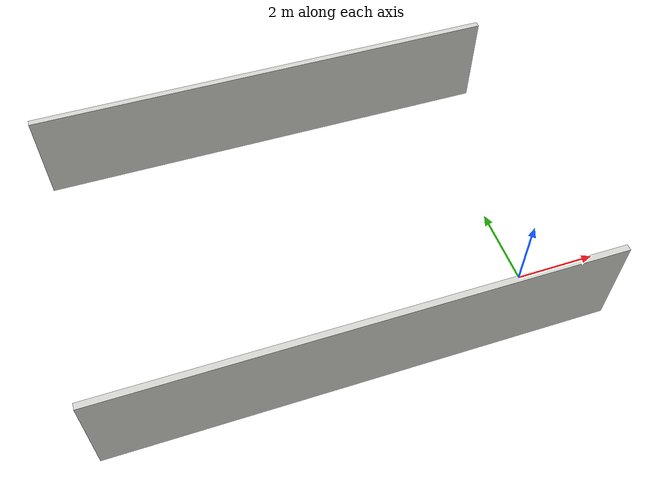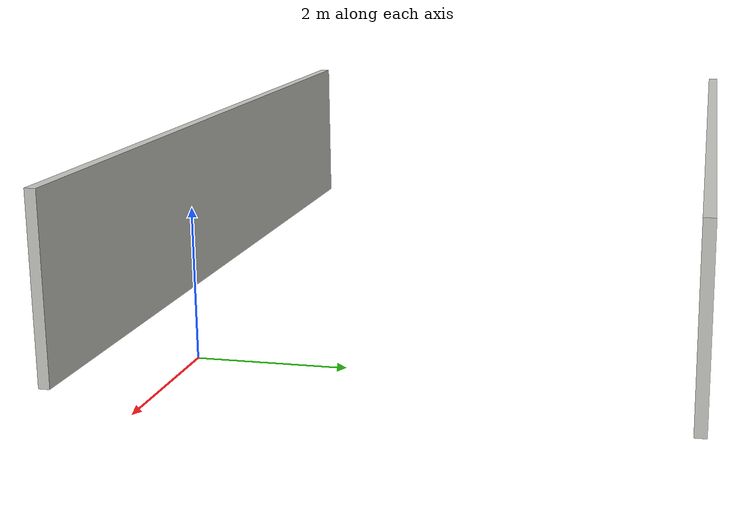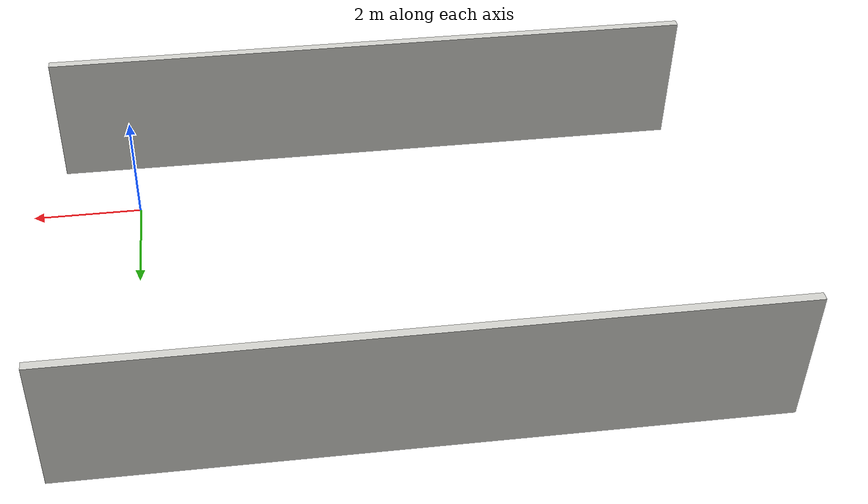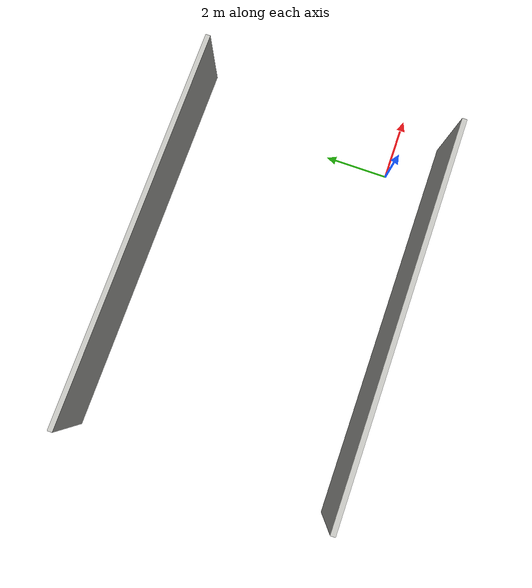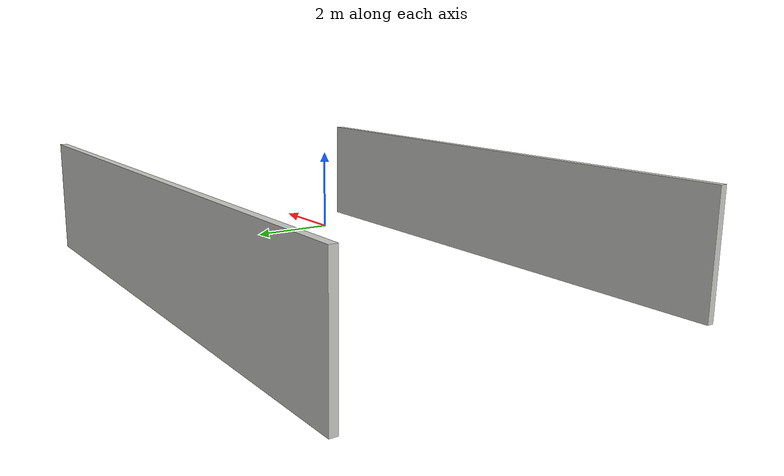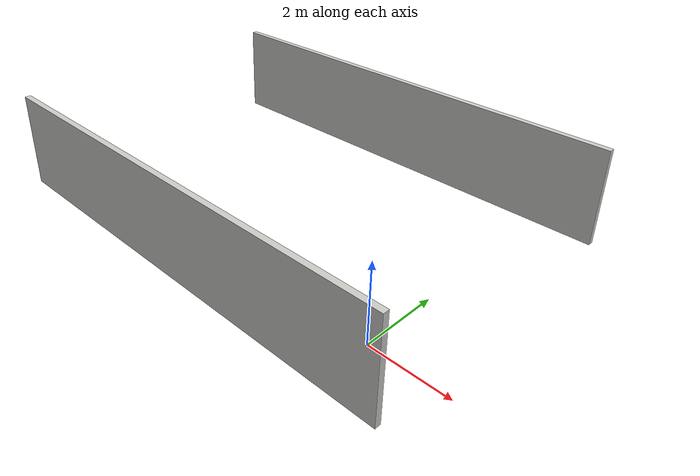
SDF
<?xml version='1.0'?>
<sdf version='1.6'>
  <model name='model_corridor_3'>
    <pose frame=''>-4.55665 2.52127 0 0 -0 0</pose>
    <link name='Wall_5'>
      <collision name='Wall_5_Collision'>
        <geometry>
          <box>
            <size>12 0.15 2.5</size>
          </box>
        </geometry>
        <pose frame=''>0 0 1.25 0 -0 0</pose>
      </collision>
      <visual name='Wall_5_Visual'>
        <pose frame=''>0 0 1.25 0 -0 0</pose>
        <geometry>
          <box>
            <size>12 0.15 2.5</size>
          </box>
        </geometry>
        <material>
          <script>
            <uri>file://media/materials/scripts/gazebo.material</uri>
            <name>Gazebo/CeilingTiled</name>
          </script>
          <ambient>0.760784 0.662745 0.627451 1</ambient>
        </material>
        <meta>
          <layer>0</layer>
        </meta>
      </visual>
      <pose frame=''>-0 3.925 0 0 -0 0</pose>
    </link>
    <link name='Wall_7'>
      <collision name='Wall_7_Collision'>
        <geometry>
          <box>
            <size>12 0.15 2.5</size>
          </box>
        </geometry>
        <pose frame=''>0 0 1.25 0 -0 0</pose>
      </collision>
      <visual name='Wall_7_Visual'>
        <pose frame=''>0 0 1.25 0 -0 0</pose>
        <geometry>
          <box>
            <size>12 0.15 2.5</size>
          </box>
        </geometry>
        <material>
          <script>
            <uri>file://media/materials/scripts/gazebo.material</uri>
            <name>Gazebo/CeilingTiled</name>
          </script>
          <ambient>0.760784 0.662745 0.627451 1</ambient>
        </material>
        <meta>
          <layer>0</layer>
        </meta>
      </visual>
      <pose frame=''>-0 -3.925 0 0 -0 3.14159</pose>
    </link>
    <static>1</static>
  </model>
</sdf>
